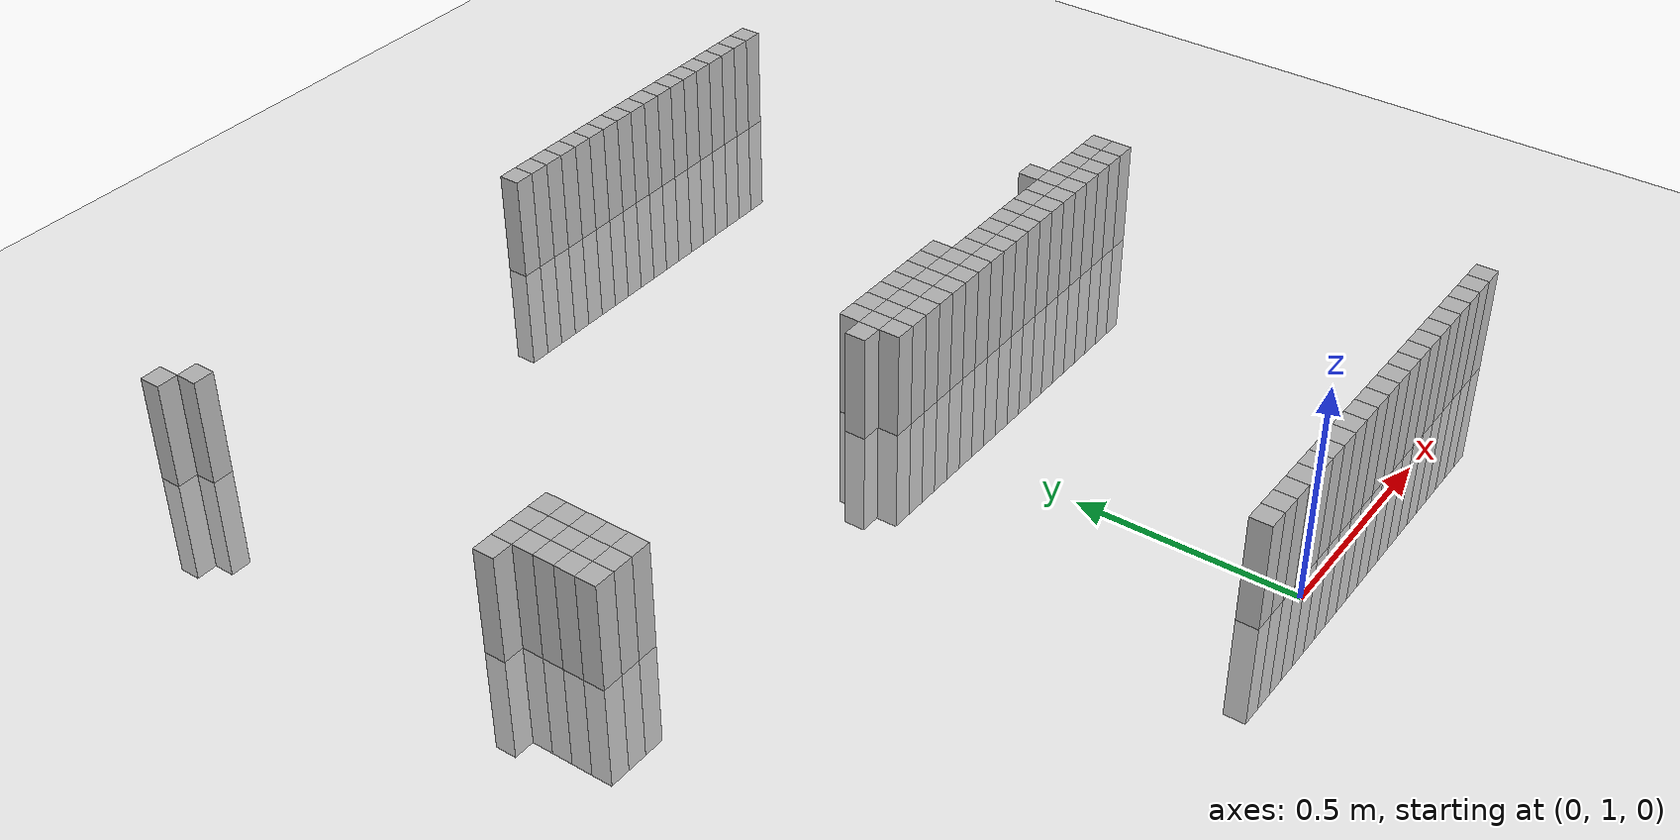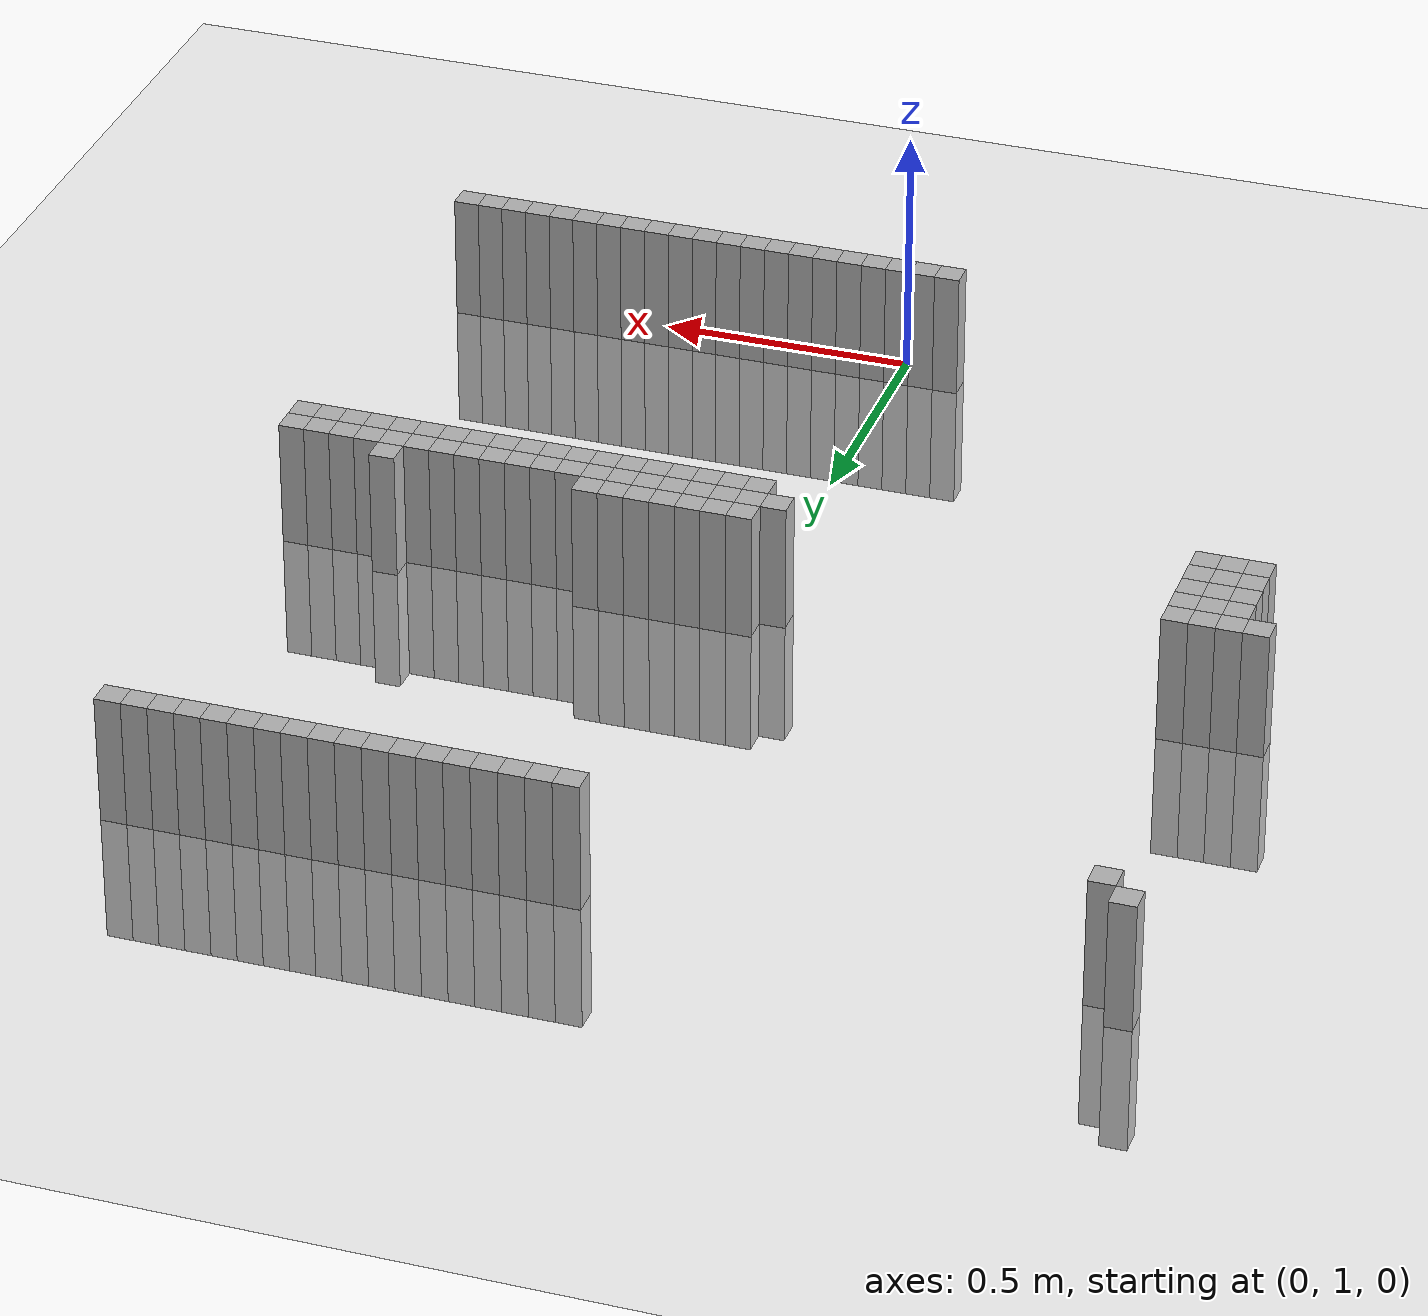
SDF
<sdf version="1.6">
 <world name="my_exploration_world">
  <include><uri>model://ground_plane</uri></include>
  <include><uri>model://sun</uri></include>
  <model name="obstacle_313">
   <pose>-0.09999985247850418 1.0500001646578312 0 0 0 0</pose>
   <link name="link">
    <collision name="collision">
     <geometry><box><size>0.05000000074505806 0.05000000074505806 0.5</size></box></geometry>
    </collision>
    <visual name="visual">
     <geometry><box><size>0.05000000074505806 0.05000000074505806 0.5</size></box></geometry>
    </visual>
   </link>
   <static>true</static>
  </model>
  <model name="obstacle_314">
   <pose>-0.04999985173344612 1.0500001646578312 0 0 0 0</pose>
   <link name="link">
    <collision name="collision">
     <geometry><box><size>0.05000000074505806 0.05000000074505806 0.5</size></box></geometry>
    </collision>
    <visual name="visual">
     <geometry><box><size>0.05000000074505806 0.05000000074505806 0.5</size></box></geometry>
    </visual>
   </link>
   <static>true</static>
  </model>
  <model name="obstacle_315">
   <pose>1.4901161193847656e-07 1.0500001646578312 0 0 0 0</pose>
   <link name="link">
    <collision name="collision">
     <geometry><box><size>0.05000000074505806 0.05000000074505806 0.5</size></box></geometry>
    </collision>
    <visual name="visual">
     <geometry><box><size>0.05000000074505806 0.05000000074505806 0.5</size></box></geometry>
    </visual>
   </link>
   <static>true</static>
  </model>
  <model name="obstacle_316">
   <pose>0.05000014975667 1.0500001646578312 0 0 0 0</pose>
   <link name="link">
    <collision name="collision">
     <geometry><box><size>0.05000000074505806 0.05000000074505806 0.5</size></box></geometry>
    </collision>
    <visual name="visual">
     <geometry><box><size>0.05000000074505806 0.05000000074505806 0.5</size></box></geometry>
    </visual>
   </link>
   <static>true</static>
  </model>
  <model name="obstacle_317">
   <pose>0.10000015050172806 1.0500001646578312 0 0 0 0</pose>
   <link name="link">
    <collision name="collision">
     <geometry><box><size>0.05000000074505806 0.05000000074505806 0.5</size></box></geometry>
    </collision>
    <visual name="visual">
     <geometry><box><size>0.05000000074505806 0.05000000074505806 0.5</size></box></geometry>
    </visual>
   </link>
   <static>true</static>
  </model>
  <model name="obstacle_318">
   <pose>0.15000015124678612 1.0500001646578312 0 0 0 0</pose>
   <link name="link">
    <collision name="collision">
     <geometry><box><size>0.05000000074505806 0.05000000074505806 0.5</size></box></geometry>
    </collision>
    <visual name="visual">
     <geometry><box><size>0.05000000074505806 0.05000000074505806 0.5</size></box></geometry>
    </visual>
   </link>
   <static>true</static>
  </model>
  <model name="obstacle_319">
   <pose>0.20000015199184418 1.0500001646578312 0 0 0 0</pose>
   <link name="link">
    <collision name="collision">
     <geometry><box><size>0.05000000074505806 0.05000000074505806 0.5</size></box></geometry>
    </collision>
    <visual name="visual">
     <geometry><box><size>0.05000000074505806 0.05000000074505806 0.5</size></box></geometry>
    </visual>
   </link>
   <static>true</static>
  </model>
  <model name="obstacle_320">
   <pose>0.25000015273690224 1.0500001646578312 0 0 0 0</pose>
   <link name="link">
    <collision name="collision">
     <geometry><box><size>0.05000000074505806 0.05000000074505806 0.5</size></box></geometry>
    </collision>
    <visual name="visual">
     <geometry><box><size>0.05000000074505806 0.05000000074505806 0.5</size></box></geometry>
    </visual>
   </link>
   <static>true</static>
  </model>
  <model name="obstacle_321">
   <pose>0.3000001534819603 1.0500001646578312 0 0 0 0</pose>
   <link name="link">
    <collision name="collision">
     <geometry><box><size>0.05000000074505806 0.05000000074505806 0.5</size></box></geometry>
    </collision>
    <visual name="visual">
     <geometry><box><size>0.05000000074505806 0.05000000074505806 0.5</size></box></geometry>
    </visual>
   </link>
   <static>true</static>
  </model>
  <model name="obstacle_322">
   <pose>0.35000015422701836 1.0500001646578312 0 0 0 0</pose>
   <link name="link">
    <collision name="collision">
     <geometry><box><size>0.05000000074505806 0.05000000074505806 0.5</size></box></geometry>
    </collision>
    <visual name="visual">
     <geometry><box><size>0.05000000074505806 0.05000000074505806 0.5</size></box></geometry>
    </visual>
   </link>
   <static>true</static>
  </model>
  <model name="obstacle_323">
   <pose>0.4000001549720764 1.0500001646578312 0 0 0 0</pose>
   <link name="link">
    <collision name="collision">
     <geometry><box><size>0.05000000074505806 0.05000000074505806 0.5</size></box></geometry>
    </collision>
    <visual name="visual">
     <geometry><box><size>0.05000000074505806 0.05000000074505806 0.5</size></box></geometry>
    </visual>
   </link>
   <static>true</static>
  </model>
  <model name="obstacle_324">
   <pose>0.4500001557171345 1.0500001646578312 0 0 0 0</pose>
   <link name="link">
    <collision name="collision">
     <geometry><box><size>0.05000000074505806 0.05000000074505806 0.5</size></box></geometry>
    </collision>
    <visual name="visual">
     <geometry><box><size>0.05000000074505806 0.05000000074505806 0.5</size></box></geometry>
    </visual>
   </link>
   <static>true</static>
  </model>
  <model name="obstacle_325">
   <pose>0.5000001564621925 1.0500001646578312 0 0 0 0</pose>
   <link name="link">
    <collision name="collision">
     <geometry><box><size>0.05000000074505806 0.05000000074505806 0.5</size></box></geometry>
    </collision>
    <visual name="visual">
     <geometry><box><size>0.05000000074505806 0.05000000074505806 0.5</size></box></geometry>
    </visual>
   </link>
   <static>true</static>
  </model>
  <model name="obstacle_326">
   <pose>0.5500001572072506 1.0500001646578312 0 0 0 0</pose>
   <link name="link">
    <collision name="collision">
     <geometry><box><size>0.05000000074505806 0.05000000074505806 0.5</size></box></geometry>
    </collision>
    <visual name="visual">
     <geometry><box><size>0.05000000074505806 0.05000000074505806 0.5</size></box></geometry>
    </visual>
   </link>
   <static>true</static>
  </model>
  <model name="obstacle_327">
   <pose>0.6000001579523087 1.0500001646578312 0 0 0 0</pose>
   <link name="link">
    <collision name="collision">
     <geometry><box><size>0.05000000074505806 0.05000000074505806 0.5</size></box></geometry>
    </collision>
    <visual name="visual">
     <geometry><box><size>0.05000000074505806 0.05000000074505806 0.5</size></box></geometry>
    </visual>
   </link>
   <static>true</static>
  </model>
  <model name="obstacle_328">
   <pose>0.6500001586973667 1.0500001646578312 0 0 0 0</pose>
   <link name="link">
    <collision name="collision">
     <geometry><box><size>0.05000000074505806 0.05000000074505806 0.5</size></box></geometry>
    </collision>
    <visual name="visual">
     <geometry><box><size>0.05000000074505806 0.05000000074505806 0.5</size></box></geometry>
    </visual>
   </link>
   <static>true</static>
  </model>
  <model name="obstacle_329">
   <pose>0.7000001594424248 1.0500001646578312 0 0 0 0</pose>
   <link name="link">
    <collision name="collision">
     <geometry><box><size>0.05000000074505806 0.05000000074505806 0.5</size></box></geometry>
    </collision>
    <visual name="visual">
     <geometry><box><size>0.05000000074505806 0.05000000074505806 0.5</size></box></geometry>
    </visual>
   </link>
   <static>true</static>
  </model>
  <model name="obstacle_330">
   <pose>0.7500001601874828 1.0500001646578312 0 0 0 0</pose>
   <link name="link">
    <collision name="collision">
     <geometry><box><size>0.05000000074505806 0.05000000074505806 0.5</size></box></geometry>
    </collision>
    <visual name="visual">
     <geometry><box><size>0.05000000074505806 0.05000000074505806 0.5</size></box></geometry>
    </visual>
   </link>
   <static>true</static>
  </model>
  <model name="obstacle_331">
   <pose>0.8000001609325409 1.0500001646578312 0 0 0 0</pose>
   <link name="link">
    <collision name="collision">
     <geometry><box><size>0.05000000074505806 0.05000000074505806 0.5</size></box></geometry>
    </collision>
    <visual name="visual">
     <geometry><box><size>0.05000000074505806 0.05000000074505806 0.5</size></box></geometry>
    </visual>
   </link>
   <static>true</static>
  </model>
  <model name="obstacle_332">
   <pose>0.850000161677599 1.0500001646578312 0 0 0 0</pose>
   <link name="link">
    <collision name="collision">
     <geometry><box><size>0.05000000074505806 0.05000000074505806 0.5</size></box></geometry>
    </collision>
    <visual name="visual">
     <geometry><box><size>0.05000000074505806 0.05000000074505806 0.5</size></box></geometry>
    </visual>
   </link>
   <static>true</static>
  </model>
  <model name="obstacle_333">
   <pose>0.900000162422657 1.0500001646578312 0 0 0 0</pose>
   <link name="link">
    <collision name="collision">
     <geometry><box><size>0.05000000074505806 0.05000000074505806 0.5</size></box></geometry>
    </collision>
    <visual name="visual">
     <geometry><box><size>0.05000000074505806 0.05000000074505806 0.5</size></box></geometry>
    </visual>
   </link>
   <static>true</static>
  </model>
  <model name="obstacle_386">
   <pose>-0.9499998651444912 1.9500001780688763 0 0 0 0</pose>
   <link name="link">
    <collision name="collision">
     <geometry><box><size>0.05000000074505806 0.05000000074505806 0.5</size></box></geometry>
    </collision>
    <visual name="visual">
     <geometry><box><size>0.05000000074505806 0.05000000074505806 0.5</size></box></geometry>
    </visual>
   </link>
   <static>true</static>
  </model>
  <model name="obstacle_387">
   <pose>-0.8999998643994331 1.9500001780688763 0 0 0 0</pose>
   <link name="link">
    <collision name="collision">
     <geometry><box><size>0.05000000074505806 0.05000000074505806 0.5</size></box></geometry>
    </collision>
    <visual name="visual">
     <geometry><box><size>0.05000000074505806 0.05000000074505806 0.5</size></box></geometry>
    </visual>
   </link>
   <static>true</static>
  </model>
  <model name="obstacle_388">
   <pose>-0.8499998636543751 1.9500001780688763 0 0 0 0</pose>
   <link name="link">
    <collision name="collision">
     <geometry><box><size>0.05000000074505806 0.05000000074505806 0.5</size></box></geometry>
    </collision>
    <visual name="visual">
     <geometry><box><size>0.05000000074505806 0.05000000074505806 0.5</size></box></geometry>
    </visual>
   </link>
   <static>true</static>
  </model>
  <model name="obstacle_389">
   <pose>1.4901161193847656e-07 1.9500001780688763 0 0 0 0</pose>
   <link name="link">
    <collision name="collision">
     <geometry><box><size>0.05000000074505806 0.05000000074505806 0.5</size></box></geometry>
    </collision>
    <visual name="visual">
     <geometry><box><size>0.05000000074505806 0.05000000074505806 0.5</size></box></geometry>
    </visual>
   </link>
   <static>true</static>
  </model>
  <model name="obstacle_390">
   <pose>0.05000014975667 1.9500001780688763 0 0 0 0</pose>
   <link name="link">
    <collision name="collision">
     <geometry><box><size>0.05000000074505806 0.05000000074505806 0.5</size></box></geometry>
    </collision>
    <visual name="visual">
     <geometry><box><size>0.05000000074505806 0.05000000074505806 0.5</size></box></geometry>
    </visual>
   </link>
   <static>true</static>
  </model>
  <model name="obstacle_391">
   <pose>0.10000015050172806 1.9500001780688763 0 0 0 0</pose>
   <link name="link">
    <collision name="collision">
     <geometry><box><size>0.05000000074505806 0.05000000074505806 0.5</size></box></geometry>
    </collision>
    <visual name="visual">
     <geometry><box><size>0.05000000074505806 0.05000000074505806 0.5</size></box></geometry>
    </visual>
   </link>
   <static>true</static>
  </model>
  <model name="obstacle_392">
   <pose>0.15000015124678612 1.9500001780688763 0 0 0 0</pose>
   <link name="link">
    <collision name="collision">
     <geometry><box><size>0.05000000074505806 0.05000000074505806 0.5</size></box></geometry>
    </collision>
    <visual name="visual">
     <geometry><box><size>0.05000000074505806 0.05000000074505806 0.5</size></box></geometry>
    </visual>
   </link>
   <static>true</static>
  </model>
  <model name="obstacle_393">
   <pose>0.20000015199184418 1.9500001780688763 0 0 0 0</pose>
   <link name="link">
    <collision name="collision">
     <geometry><box><size>0.05000000074505806 0.05000000074505806 0.5</size></box></geometry>
    </collision>
    <visual name="visual">
     <geometry><box><size>0.05000000074505806 0.05000000074505806 0.5</size></box></geometry>
    </visual>
   </link>
   <static>true</static>
  </model>
  <model name="obstacle_394">
   <pose>0.25000015273690224 1.9500001780688763 0 0 0 0</pose>
   <link name="link">
    <collision name="collision">
     <geometry><box><size>0.05000000074505806 0.05000000074505806 0.5</size></box></geometry>
    </collision>
    <visual name="visual">
     <geometry><box><size>0.05000000074505806 0.05000000074505806 0.5</size></box></geometry>
    </visual>
   </link>
   <static>true</static>
  </model>
  <model name="obstacle_395">
   <pose>0.3000001534819603 1.9500001780688763 0 0 0 0</pose>
   <link name="link">
    <collision name="collision">
     <geometry><box><size>0.05000000074505806 0.05000000074505806 0.5</size></box></geometry>
    </collision>
    <visual name="visual">
     <geometry><box><size>0.05000000074505806 0.05000000074505806 0.5</size></box></geometry>
    </visual>
   </link>
   <static>true</static>
  </model>
  <model name="obstacle_396">
   <pose>0.35000015422701836 1.9500001780688763 0 0 0 0</pose>
   <link name="link">
    <collision name="collision">
     <geometry><box><size>0.05000000074505806 0.05000000074505806 0.5</size></box></geometry>
    </collision>
    <visual name="visual">
     <geometry><box><size>0.05000000074505806 0.05000000074505806 0.5</size></box></geometry>
    </visual>
   </link>
   <static>true</static>
  </model>
  <model name="obstacle_397">
   <pose>0.4000001549720764 1.9500001780688763 0 0 0 0</pose>
   <link name="link">
    <collision name="collision">
     <geometry><box><size>0.05000000074505806 0.05000000074505806 0.5</size></box></geometry>
    </collision>
    <visual name="visual">
     <geometry><box><size>0.05000000074505806 0.05000000074505806 0.5</size></box></geometry>
    </visual>
   </link>
   <static>true</static>
  </model>
  <model name="obstacle_398">
   <pose>0.4500001557171345 1.9500001780688763 0 0 0 0</pose>
   <link name="link">
    <collision name="collision">
     <geometry><box><size>0.05000000074505806 0.05000000074505806 0.5</size></box></geometry>
    </collision>
    <visual name="visual">
     <geometry><box><size>0.05000000074505806 0.05000000074505806 0.5</size></box></geometry>
    </visual>
   </link>
   <static>true</static>
  </model>
  <model name="obstacle_399">
   <pose>0.5000001564621925 1.9500001780688763 0 0 0 0</pose>
   <link name="link">
    <collision name="collision">
     <geometry><box><size>0.05000000074505806 0.05000000074505806 0.5</size></box></geometry>
    </collision>
    <visual name="visual">
     <geometry><box><size>0.05000000074505806 0.05000000074505806 0.5</size></box></geometry>
    </visual>
   </link>
   <static>true</static>
  </model>
  <model name="obstacle_400">
   <pose>0.5500001572072506 1.9500001780688763 0 0 0 0</pose>
   <link name="link">
    <collision name="collision">
     <geometry><box><size>0.05000000074505806 0.05000000074505806 0.5</size></box></geometry>
    </collision>
    <visual name="visual">
     <geometry><box><size>0.05000000074505806 0.05000000074505806 0.5</size></box></geometry>
    </visual>
   </link>
   <static>true</static>
  </model>
  <model name="obstacle_401">
   <pose>0.6000001579523087 1.9500001780688763 0 0 0 0</pose>
   <link name="link">
    <collision name="collision">
     <geometry><box><size>0.05000000074505806 0.05000000074505806 0.5</size></box></geometry>
    </collision>
    <visual name="visual">
     <geometry><box><size>0.05000000074505806 0.05000000074505806 0.5</size></box></geometry>
    </visual>
   </link>
   <static>true</static>
  </model>
  <model name="obstacle_402">
   <pose>0.6500001586973667 1.9500001780688763 0 0 0 0</pose>
   <link name="link">
    <collision name="collision">
     <geometry><box><size>0.05000000074505806 0.05000000074505806 0.5</size></box></geometry>
    </collision>
    <visual name="visual">
     <geometry><box><size>0.05000000074505806 0.05000000074505806 0.5</size></box></geometry>
    </visual>
   </link>
   <static>true</static>
  </model>
  <model name="obstacle_403">
   <pose>0.7000001594424248 1.9500001780688763 0 0 0 0</pose>
   <link name="link">
    <collision name="collision">
     <geometry><box><size>0.05000000074505806 0.05000000074505806 0.5</size></box></geometry>
    </collision>
    <visual name="visual">
     <geometry><box><size>0.05000000074505806 0.05000000074505806 0.5</size></box></geometry>
    </visual>
   </link>
   <static>true</static>
  </model>
  <model name="obstacle_404">
   <pose>0.7500001601874828 1.9500001780688763 0 0 0 0</pose>
   <link name="link">
    <collision name="collision">
     <geometry><box><size>0.05000000074505806 0.05000000074505806 0.5</size></box></geometry>
    </collision>
    <visual name="visual">
     <geometry><box><size>0.05000000074505806 0.05000000074505806 0.5</size></box></geometry>
    </visual>
   </link>
   <static>true</static>
  </model>
  <model name="obstacle_405">
   <pose>0.8000001609325409 1.9500001780688763 0 0 0 0</pose>
   <link name="link">
    <collision name="collision">
     <geometry><box><size>0.05000000074505806 0.05000000074505806 0.5</size></box></geometry>
    </collision>
    <visual name="visual">
     <geometry><box><size>0.05000000074505806 0.05000000074505806 0.5</size></box></geometry>
    </visual>
   </link>
   <static>true</static>
  </model>
  <model name="obstacle_406">
   <pose>0.850000161677599 1.9500001780688763 0 0 0 0</pose>
   <link name="link">
    <collision name="collision">
     <geometry><box><size>0.05000000074505806 0.05000000074505806 0.5</size></box></geometry>
    </collision>
    <visual name="visual">
     <geometry><box><size>0.05000000074505806 0.05000000074505806 0.5</size></box></geometry>
    </visual>
   </link>
   <static>true</static>
  </model>
  <model name="obstacle_407">
   <pose>0.900000162422657 1.9500001780688763 0 0 0 0</pose>
   <link name="link">
    <collision name="collision">
     <geometry><box><size>0.05000000074505806 0.05000000074505806 0.5</size></box></geometry>
    </collision>
    <visual name="visual">
     <geometry><box><size>0.05000000074505806 0.05000000074505806 0.5</size></box></geometry>
    </visual>
   </link>
   <static>true</static>
  </model>
  <model name="obstacle_429">
   <pose>-0.9499998651444912 2.0000001788139343 0 0 0 0</pose>
   <link name="link">
    <collision name="collision">
     <geometry><box><size>0.05000000074505806 0.05000000074505806 0.5</size></box></geometry>
    </collision>
    <visual name="visual">
     <geometry><box><size>0.05000000074505806 0.05000000074505806 0.5</size></box></geometry>
    </visual>
   </link>
   <static>true</static>
  </model>
  <model name="obstacle_430">
   <pose>-0.8999998643994331 2.0000001788139343 0 0 0 0</pose>
   <link name="link">
    <collision name="collision">
     <geometry><box><size>0.05000000074505806 0.05000000074505806 0.5</size></box></geometry>
    </collision>
    <visual name="visual">
     <geometry><box><size>0.05000000074505806 0.05000000074505806 0.5</size></box></geometry>
    </visual>
   </link>
   <static>true</static>
  </model>
  <model name="obstacle_431">
   <pose>-0.8499998636543751 2.0000001788139343 0 0 0 0</pose>
   <link name="link">
    <collision name="collision">
     <geometry><box><size>0.05000000074505806 0.05000000074505806 0.5</size></box></geometry>
    </collision>
    <visual name="visual">
     <geometry><box><size>0.05000000074505806 0.05000000074505806 0.5</size></box></geometry>
    </visual>
   </link>
   <static>true</static>
  </model>
  <model name="obstacle_432">
   <pose>-0.04999985173344612 2.0000001788139343 0 0 0 0</pose>
   <link name="link">
    <collision name="collision">
     <geometry><box><size>0.05000000074505806 0.05000000074505806 0.5</size></box></geometry>
    </collision>
    <visual name="visual">
     <geometry><box><size>0.05000000074505806 0.05000000074505806 0.5</size></box></geometry>
    </visual>
   </link>
   <static>true</static>
  </model>
  <model name="obstacle_433">
   <pose>1.4901161193847656e-07 2.0000001788139343 0 0 0 0</pose>
   <link name="link">
    <collision name="collision">
     <geometry><box><size>0.05000000074505806 0.05000000074505806 0.5</size></box></geometry>
    </collision>
    <visual name="visual">
     <geometry><box><size>0.05000000074505806 0.05000000074505806 0.5</size></box></geometry>
    </visual>
   </link>
   <static>true</static>
  </model>
  <model name="obstacle_434">
   <pose>0.05000014975667 2.0000001788139343 0 0 0 0</pose>
   <link name="link">
    <collision name="collision">
     <geometry><box><size>0.05000000074505806 0.05000000074505806 0.5</size></box></geometry>
    </collision>
    <visual name="visual">
     <geometry><box><size>0.05000000074505806 0.05000000074505806 0.5</size></box></geometry>
    </visual>
   </link>
   <static>true</static>
  </model>
  <model name="obstacle_435">
   <pose>0.10000015050172806 2.0000001788139343 0 0 0 0</pose>
   <link name="link">
    <collision name="collision">
     <geometry><box><size>0.05000000074505806 0.05000000074505806 0.5</size></box></geometry>
    </collision>
    <visual name="visual">
     <geometry><box><size>0.05000000074505806 0.05000000074505806 0.5</size></box></geometry>
    </visual>
   </link>
   <static>true</static>
  </model>
  <model name="obstacle_436">
   <pose>0.15000015124678612 2.0000001788139343 0 0 0 0</pose>
   <link name="link">
    <collision name="collision">
     <geometry><box><size>0.05000000074505806 0.05000000074505806 0.5</size></box></geometry>
    </collision>
    <visual name="visual">
     <geometry><box><size>0.05000000074505806 0.05000000074505806 0.5</size></box></geometry>
    </visual>
   </link>
   <static>true</static>
  </model>
  <model name="obstacle_437">
   <pose>0.20000015199184418 2.0000001788139343 0 0 0 0</pose>
   <link name="link">
    <collision name="collision">
     <geometry><box><size>0.05000000074505806 0.05000000074505806 0.5</size></box></geometry>
    </collision>
    <visual name="visual">
     <geometry><box><size>0.05000000074505806 0.05000000074505806 0.5</size></box></geometry>
    </visual>
   </link>
   <static>true</static>
  </model>
  <model name="obstacle_438">
   <pose>0.25000015273690224 2.0000001788139343 0 0 0 0</pose>
   <link name="link">
    <collision name="collision">
     <geometry><box><size>0.05000000074505806 0.05000000074505806 0.5</size></box></geometry>
    </collision>
    <visual name="visual">
     <geometry><box><size>0.05000000074505806 0.05000000074505806 0.5</size></box></geometry>
    </visual>
   </link>
   <static>true</static>
  </model>
  <model name="obstacle_439">
   <pose>0.3000001534819603 2.0000001788139343 0 0 0 0</pose>
   <link name="link">
    <collision name="collision">
     <geometry><box><size>0.05000000074505806 0.05000000074505806 0.5</size></box></geometry>
    </collision>
    <visual name="visual">
     <geometry><box><size>0.05000000074505806 0.05000000074505806 0.5</size></box></geometry>
    </visual>
   </link>
   <static>true</static>
  </model>
  <model name="obstacle_440">
   <pose>0.35000015422701836 2.0000001788139343 0 0 0 0</pose>
   <link name="link">
    <collision name="collision">
     <geometry><box><size>0.05000000074505806 0.05000000074505806 0.5</size></box></geometry>
    </collision>
    <visual name="visual">
     <geometry><box><size>0.05000000074505806 0.05000000074505806 0.5</size></box></geometry>
    </visual>
   </link>
   <static>true</static>
  </model>
  <model name="obstacle_441">
   <pose>0.4000001549720764 2.0000001788139343 0 0 0 0</pose>
   <link name="link">
    <collision name="collision">
     <geometry><box><size>0.05000000074505806 0.05000000074505806 0.5</size></box></geometry>
    </collision>
    <visual name="visual">
     <geometry><box><size>0.05000000074505806 0.05000000074505806 0.5</size></box></geometry>
    </visual>
   </link>
   <static>true</static>
  </model>
  <model name="obstacle_442">
   <pose>0.4500001557171345 2.0000001788139343 0 0 0 0</pose>
   <link name="link">
    <collision name="collision">
     <geometry><box><size>0.05000000074505806 0.05000000074505806 0.5</size></box></geometry>
    </collision>
    <visual name="visual">
     <geometry><box><size>0.05000000074505806 0.05000000074505806 0.5</size></box></geometry>
    </visual>
   </link>
   <static>true</static>
  </model>
  <model name="obstacle_443">
   <pose>0.5000001564621925 2.0000001788139343 0 0 0 0</pose>
   <link name="link">
    <collision name="collision">
     <geometry><box><size>0.05000000074505806 0.05000000074505806 0.5</size></box></geometry>
    </collision>
    <visual name="visual">
     <geometry><box><size>0.05000000074505806 0.05000000074505806 0.5</size></box></geometry>
    </visual>
   </link>
   <static>true</static>
  </model>
  <model name="obstacle_444">
   <pose>0.5500001572072506 2.0000001788139343 0 0 0 0</pose>
   <link name="link">
    <collision name="collision">
     <geometry><box><size>0.05000000074505806 0.05000000074505806 0.5</size></box></geometry>
    </collision>
    <visual name="visual">
     <geometry><box><size>0.05000000074505806 0.05000000074505806 0.5</size></box></geometry>
    </visual>
   </link>
   <static>true</static>
  </model>
  <model name="obstacle_445">
   <pose>0.6000001579523087 2.0000001788139343 0 0 0 0</pose>
   <link name="link">
    <collision name="collision">
     <geometry><box><size>0.05000000074505806 0.05000000074505806 0.5</size></box></geometry>
    </collision>
    <visual name="visual">
     <geometry><box><size>0.05000000074505806 0.05000000074505806 0.5</size></box></geometry>
    </visual>
   </link>
   <static>true</static>
  </model>
  <model name="obstacle_446">
   <pose>0.6500001586973667 2.0000001788139343 0 0 0 0</pose>
   <link name="link">
    <collision name="collision">
     <geometry><box><size>0.05000000074505806 0.05000000074505806 0.5</size></box></geometry>
    </collision>
    <visual name="visual">
     <geometry><box><size>0.05000000074505806 0.05000000074505806 0.5</size></box></geometry>
    </visual>
   </link>
   <static>true</static>
  </model>
  <model name="obstacle_447">
   <pose>0.7000001594424248 2.0000001788139343 0 0 0 0</pose>
   <link name="link">
    <collision name="collision">
     <geometry><box><size>0.05000000074505806 0.05000000074505806 0.5</size></box></geometry>
    </collision>
    <visual name="visual">
     <geometry><box><size>0.05000000074505806 0.05000000074505806 0.5</size></box></geometry>
    </visual>
   </link>
   <static>true</static>
  </model>
  <model name="obstacle_448">
   <pose>0.7500001601874828 2.0000001788139343 0 0 0 0</pose>
   <link name="link">
    <collision name="collision">
     <geometry><box><size>0.05000000074505806 0.05000000074505806 0.5</size></box></geometry>
    </collision>
    <visual name="visual">
     <geometry><box><size>0.05000000074505806 0.05000000074505806 0.5</size></box></geometry>
    </visual>
   </link>
   <static>true</static>
  </model>
  <model name="obstacle_449">
   <pose>0.8000001609325409 2.0000001788139343 0 0 0 0</pose>
   <link name="link">
    <collision name="collision">
     <geometry><box><size>0.05000000074505806 0.05000000074505806 0.5</size></box></geometry>
    </collision>
    <visual name="visual">
     <geometry><box><size>0.05000000074505806 0.05000000074505806 0.5</size></box></geometry>
    </visual>
   </link>
   <static>true</static>
  </model>
  <model name="obstacle_450">
   <pose>0.850000161677599 2.0000001788139343 0 0 0 0</pose>
   <link name="link">
    <collision name="collision">
     <geometry><box><size>0.05000000074505806 0.05000000074505806 0.5</size></box></geometry>
    </collision>
    <visual name="visual">
     <geometry><box><size>0.05000000074505806 0.05000000074505806 0.5</size></box></geometry>
    </visual>
   </link>
   <static>true</static>
  </model>
  <model name="obstacle_451">
   <pose>0.900000162422657 2.0000001788139343 0 0 0 0</pose>
   <link name="link">
    <collision name="collision">
     <geometry><box><size>0.05000000074505806 0.05000000074505806 0.5</size></box></geometry>
    </collision>
    <visual name="visual">
     <geometry><box><size>0.05000000074505806 0.05000000074505806 0.5</size></box></geometry>
    </visual>
   </link>
   <static>true</static>
  </model>
  <model name="obstacle_471">
   <pose>-0.9499998651444912 2.0500001795589924 0 0 0 0</pose>
   <link name="link">
    <collision name="collision">
     <geometry><box><size>0.05000000074505806 0.05000000074505806 0.5</size></box></geometry>
    </collision>
    <visual name="visual">
     <geometry><box><size>0.05000000074505806 0.05000000074505806 0.5</size></box></geometry>
    </visual>
   </link>
   <static>true</static>
  </model>
  <model name="obstacle_472">
   <pose>-0.8999998643994331 2.0500001795589924 0 0 0 0</pose>
   <link name="link">
    <collision name="collision">
     <geometry><box><size>0.05000000074505806 0.05000000074505806 0.5</size></box></geometry>
    </collision>
    <visual name="visual">
     <geometry><box><size>0.05000000074505806 0.05000000074505806 0.5</size></box></geometry>
    </visual>
   </link>
   <static>true</static>
  </model>
  <model name="obstacle_473">
   <pose>-0.8499998636543751 2.0500001795589924 0 0 0 0</pose>
   <link name="link">
    <collision name="collision">
     <geometry><box><size>0.05000000074505806 0.05000000074505806 0.5</size></box></geometry>
    </collision>
    <visual name="visual">
     <geometry><box><size>0.05000000074505806 0.05000000074505806 0.5</size></box></geometry>
    </visual>
   </link>
   <static>true</static>
  </model>
  <model name="obstacle_474">
   <pose>1.4901161193847656e-07 2.0500001795589924 0 0 0 0</pose>
   <link name="link">
    <collision name="collision">
     <geometry><box><size>0.05000000074505806 0.05000000074505806 0.5</size></box></geometry>
    </collision>
    <visual name="visual">
     <geometry><box><size>0.05000000074505806 0.05000000074505806 0.5</size></box></geometry>
    </visual>
   </link>
   <static>true</static>
  </model>
  <model name="obstacle_475">
   <pose>0.05000014975667 2.0500001795589924 0 0 0 0</pose>
   <link name="link">
    <collision name="collision">
     <geometry><box><size>0.05000000074505806 0.05000000074505806 0.5</size></box></geometry>
    </collision>
    <visual name="visual">
     <geometry><box><size>0.05000000074505806 0.05000000074505806 0.5</size></box></geometry>
    </visual>
   </link>
   <static>true</static>
  </model>
  <model name="obstacle_476">
   <pose>0.10000015050172806 2.0500001795589924 0 0 0 0</pose>
   <link name="link">
    <collision name="collision">
     <geometry><box><size>0.05000000074505806 0.05000000074505806 0.5</size></box></geometry>
    </collision>
    <visual name="visual">
     <geometry><box><size>0.05000000074505806 0.05000000074505806 0.5</size></box></geometry>
    </visual>
   </link>
   <static>true</static>
  </model>
  <model name="obstacle_477">
   <pose>0.15000015124678612 2.0500001795589924 0 0 0 0</pose>
   <link name="link">
    <collision name="collision">
     <geometry><box><size>0.05000000074505806 0.05000000074505806 0.5</size></box></geometry>
    </collision>
    <visual name="visual">
     <geometry><box><size>0.05000000074505806 0.05000000074505806 0.5</size></box></geometry>
    </visual>
   </link>
   <static>true</static>
  </model>
  <model name="obstacle_478">
   <pose>0.20000015199184418 2.0500001795589924 0 0 0 0</pose>
   <link name="link">
    <collision name="collision">
     <geometry><box><size>0.05000000074505806 0.05000000074505806 0.5</size></box></geometry>
    </collision>
    <visual name="visual">
     <geometry><box><size>0.05000000074505806 0.05000000074505806 0.5</size></box></geometry>
    </visual>
   </link>
   <static>true</static>
  </model>
  <model name="obstacle_479">
   <pose>0.25000015273690224 2.0500001795589924 0 0 0 0</pose>
   <link name="link">
    <collision name="collision">
     <geometry><box><size>0.05000000074505806 0.05000000074505806 0.5</size></box></geometry>
    </collision>
    <visual name="visual">
     <geometry><box><size>0.05000000074505806 0.05000000074505806 0.5</size></box></geometry>
    </visual>
   </link>
   <static>true</static>
  </model>
  <model name="obstacle_480">
   <pose>0.3000001534819603 2.0500001795589924 0 0 0 0</pose>
   <link name="link">
    <collision name="collision">
     <geometry><box><size>0.05000000074505806 0.05000000074505806 0.5</size></box></geometry>
    </collision>
    <visual name="visual">
     <geometry><box><size>0.05000000074505806 0.05000000074505806 0.5</size></box></geometry>
    </visual>
   </link>
   <static>true</static>
  </model>
  <model name="obstacle_481">
   <pose>0.7000001594424248 2.0500001795589924 0 0 0 0</pose>
   <link name="link">
    <collision name="collision">
     <geometry><box><size>0.05000000074505806 0.05000000074505806 0.5</size></box></geometry>
    </collision>
    <visual name="visual">
     <geometry><box><size>0.05000000074505806 0.05000000074505806 0.5</size></box></geometry>
    </visual>
   </link>
   <static>true</static>
  </model>
  <model name="obstacle_482">
   <pose>-0.9499998651444912 2.1000001803040504 0 0 0 0</pose>
   <link name="link">
    <collision name="collision">
     <geometry><box><size>0.05000000074505806 0.05000000074505806 0.5</size></box></geometry>
    </collision>
    <visual name="visual">
     <geometry><box><size>0.05000000074505806 0.05000000074505806 0.5</size></box></geometry>
    </visual>
   </link>
   <static>true</static>
  </model>
  <model name="obstacle_483">
   <pose>-0.8999998643994331 2.1000001803040504 0 0 0 0</pose>
   <link name="link">
    <collision name="collision">
     <geometry><box><size>0.05000000074505806 0.05000000074505806 0.5</size></box></geometry>
    </collision>
    <visual name="visual">
     <geometry><box><size>0.05000000074505806 0.05000000074505806 0.5</size></box></geometry>
    </visual>
   </link>
   <static>true</static>
  </model>
  <model name="obstacle_484">
   <pose>-0.8499998636543751 2.1000001803040504 0 0 0 0</pose>
   <link name="link">
    <collision name="collision">
     <geometry><box><size>0.05000000074505806 0.05000000074505806 0.5</size></box></geometry>
    </collision>
    <visual name="visual">
     <geometry><box><size>0.05000000074505806 0.05000000074505806 0.5</size></box></geometry>
    </visual>
   </link>
   <static>true</static>
  </model>
  <model name="obstacle_485">
   <pose>-0.9999998658895493 2.1500001810491085 0 0 0 0</pose>
   <link name="link">
    <collision name="collision">
     <geometry><box><size>0.05000000074505806 0.05000000074505806 0.5</size></box></geometry>
    </collision>
    <visual name="visual">
     <geometry><box><size>0.05000000074505806 0.05000000074505806 0.5</size></box></geometry>
    </visual>
   </link>
   <static>true</static>
  </model>
  <model name="obstacle_486">
   <pose>-0.9499998651444912 2.1500001810491085 0 0 0 0</pose>
   <link name="link">
    <collision name="collision">
     <geometry><box><size>0.05000000074505806 0.05000000074505806 0.5</size></box></geometry>
    </collision>
    <visual name="visual">
     <geometry><box><size>0.05000000074505806 0.05000000074505806 0.5</size></box></geometry>
    </visual>
   </link>
   <static>true</static>
  </model>
  <model name="obstacle_487">
   <pose>-0.8999998643994331 2.1500001810491085 0 0 0 0</pose>
   <link name="link">
    <collision name="collision">
     <geometry><box><size>0.05000000074505806 0.05000000074505806 0.5</size></box></geometry>
    </collision>
    <visual name="visual">
     <geometry><box><size>0.05000000074505806 0.05000000074505806 0.5</size></box></geometry>
    </visual>
   </link>
   <static>true</static>
  </model>
  <model name="obstacle_488">
   <pose>-0.8499998636543751 2.1500001810491085 0 0 0 0</pose>
   <link name="link">
    <collision name="collision">
     <geometry><box><size>0.05000000074505806 0.05000000074505806 0.5</size></box></geometry>
    </collision>
    <visual name="visual">
     <geometry><box><size>0.05000000074505806 0.05000000074505806 0.5</size></box></geometry>
    </visual>
   </link>
   <static>true</static>
  </model>
  <model name="obstacle_496">
   <pose>-0.9499998651444912 3.0000001937150955 0 0 0 0</pose>
   <link name="link">
    <collision name="collision">
     <geometry><box><size>0.05000000074505806 0.05000000074505806 0.5</size></box></geometry>
    </collision>
    <visual name="visual">
     <geometry><box><size>0.05000000074505806 0.05000000074505806 0.5</size></box></geometry>
    </visual>
   </link>
   <static>true</static>
  </model>
  <model name="obstacle_497">
   <pose>1.4901161193847656e-07 3.0000001937150955 0 0 0 0</pose>
   <link name="link">
    <collision name="collision">
     <geometry><box><size>0.05000000074505806 0.05000000074505806 0.5</size></box></geometry>
    </collision>
    <visual name="visual">
     <geometry><box><size>0.05000000074505806 0.05000000074505806 0.5</size></box></geometry>
    </visual>
   </link>
   <static>true</static>
  </model>
  <model name="obstacle_498">
   <pose>0.05000014975667 3.0000001937150955 0 0 0 0</pose>
   <link name="link">
    <collision name="collision">
     <geometry><box><size>0.05000000074505806 0.05000000074505806 0.5</size></box></geometry>
    </collision>
    <visual name="visual">
     <geometry><box><size>0.05000000074505806 0.05000000074505806 0.5</size></box></geometry>
    </visual>
   </link>
   <static>true</static>
  </model>
  <model name="obstacle_499">
   <pose>0.10000015050172806 3.0000001937150955 0 0 0 0</pose>
   <link name="link">
    <collision name="collision">
     <geometry><box><size>0.05000000074505806 0.05000000074505806 0.5</size></box></geometry>
    </collision>
    <visual name="visual">
     <geometry><box><size>0.05000000074505806 0.05000000074505806 0.5</size></box></geometry>
    </visual>
   </link>
   <static>true</static>
  </model>
  <model name="obstacle_500">
   <pose>0.15000015124678612 3.0000001937150955 0 0 0 0</pose>
   <link name="link">
    <collision name="collision">
     <geometry><box><size>0.05000000074505806 0.05000000074505806 0.5</size></box></geometry>
    </collision>
    <visual name="visual">
     <geometry><box><size>0.05000000074505806 0.05000000074505806 0.5</size></box></geometry>
    </visual>
   </link>
   <static>true</static>
  </model>
  <model name="obstacle_501">
   <pose>0.20000015199184418 3.0000001937150955 0 0 0 0</pose>
   <link name="link">
    <collision name="collision">
     <geometry><box><size>0.05000000074505806 0.05000000074505806 0.5</size></box></geometry>
    </collision>
    <visual name="visual">
     <geometry><box><size>0.05000000074505806 0.05000000074505806 0.5</size></box></geometry>
    </visual>
   </link>
   <static>true</static>
  </model>
  <model name="obstacle_502">
   <pose>0.25000015273690224 3.0000001937150955 0 0 0 0</pose>
   <link name="link">
    <collision name="collision">
     <geometry><box><size>0.05000000074505806 0.05000000074505806 0.5</size></box></geometry>
    </collision>
    <visual name="visual">
     <geometry><box><size>0.05000000074505806 0.05000000074505806 0.5</size></box></geometry>
    </visual>
   </link>
   <static>true</static>
  </model>
  <model name="obstacle_503">
   <pose>0.3000001534819603 3.0000001937150955 0 0 0 0</pose>
   <link name="link">
    <collision name="collision">
     <geometry><box><size>0.05000000074505806 0.05000000074505806 0.5</size></box></geometry>
    </collision>
    <visual name="visual">
     <geometry><box><size>0.05000000074505806 0.05000000074505806 0.5</size></box></geometry>
    </visual>
   </link>
   <static>true</static>
  </model>
  <model name="obstacle_504">
   <pose>0.35000015422701836 3.0000001937150955 0 0 0 0</pose>
   <link name="link">
    <collision name="collision">
     <geometry><box><size>0.05000000074505806 0.05000000074505806 0.5</size></box></geometry>
    </collision>
    <visual name="visual">
     <geometry><box><size>0.05000000074505806 0.05000000074505806 0.5</size></box></geometry>
    </visual>
   </link>
   <static>true</static>
  </model>
  <model name="obstacle_505">
   <pose>0.4000001549720764 3.0000001937150955 0 0 0 0</pose>
   <link name="link">
    <collision name="collision">
     <geometry><box><size>0.05000000074505806 0.05000000074505806 0.5</size></box></geometry>
    </collision>
    <visual name="visual">
     <geometry><box><size>0.05000000074505806 0.05000000074505806 0.5</size></box></geometry>
    </visual>
   </link>
   <static>true</static>
  </model>
  <model name="obstacle_506">
   <pose>0.4500001557171345 3.0000001937150955 0 0 0 0</pose>
   <link name="link">
    <collision name="collision">
     <geometry><box><size>0.05000000074505806 0.05000000074505806 0.5</size></box></geometry>
    </collision>
    <visual name="visual">
     <geometry><box><size>0.05000000074505806 0.05000000074505806 0.5</size></box></geometry>
    </visual>
   </link>
   <static>true</static>
  </model>
  <model name="obstacle_507">
   <pose>0.5000001564621925 3.0000001937150955 0 0 0 0</pose>
   <link name="link">
    <collision name="collision">
     <geometry><box><size>0.05000000074505806 0.05000000074505806 0.5</size></box></geometry>
    </collision>
    <visual name="visual">
     <geometry><box><size>0.05000000074505806 0.05000000074505806 0.5</size></box></geometry>
    </visual>
   </link>
   <static>true</static>
  </model>
  <model name="obstacle_508">
   <pose>0.5500001572072506 3.0000001937150955 0 0 0 0</pose>
   <link name="link">
    <collision name="collision">
     <geometry><box><size>0.05000000074505806 0.05000000074505806 0.5</size></box></geometry>
    </collision>
    <visual name="visual">
     <geometry><box><size>0.05000000074505806 0.05000000074505806 0.5</size></box></geometry>
    </visual>
   </link>
   <static>true</static>
  </model>
  <model name="obstacle_509">
   <pose>0.6000001579523087 3.0000001937150955 0 0 0 0</pose>
   <link name="link">
    <collision name="collision">
     <geometry><box><size>0.05000000074505806 0.05000000074505806 0.5</size></box></geometry>
    </collision>
    <visual name="visual">
     <geometry><box><size>0.05000000074505806 0.05000000074505806 0.5</size></box></geometry>
    </visual>
   </link>
   <static>true</static>
  </model>
  <model name="obstacle_510">
   <pose>0.6500001586973667 3.0000001937150955 0 0 0 0</pose>
   <link name="link">
    <collision name="collision">
     <geometry><box><size>0.05000000074505806 0.05000000074505806 0.5</size></box></geometry>
    </collision>
    <visual name="visual">
     <geometry><box><size>0.05000000074505806 0.05000000074505806 0.5</size></box></geometry>
    </visual>
   </link>
   <static>true</static>
  </model>
  <model name="obstacle_511">
   <pose>0.7000001594424248 3.0000001937150955 0 0 0 0</pose>
   <link name="link">
    <collision name="collision">
     <geometry><box><size>0.05000000074505806 0.05000000074505806 0.5</size></box></geometry>
    </collision>
    <visual name="visual">
     <geometry><box><size>0.05000000074505806 0.05000000074505806 0.5</size></box></geometry>
    </visual>
   </link>
   <static>true</static>
  </model>
  <model name="obstacle_512">
   <pose>0.7500001601874828 3.0000001937150955 0 0 0 0</pose>
   <link name="link">
    <collision name="collision">
     <geometry><box><size>0.05000000074505806 0.05000000074505806 0.5</size></box></geometry>
    </collision>
    <visual name="visual">
     <geometry><box><size>0.05000000074505806 0.05000000074505806 0.5</size></box></geometry>
    </visual>
   </link>
   <static>true</static>
  </model>
  <model name="obstacle_513">
   <pose>0.8000001609325409 3.0000001937150955 0 0 0 0</pose>
   <link name="link">
    <collision name="collision">
     <geometry><box><size>0.05000000074505806 0.05000000074505806 0.5</size></box></geometry>
    </collision>
    <visual name="visual">
     <geometry><box><size>0.05000000074505806 0.05000000074505806 0.5</size></box></geometry>
    </visual>
   </link>
   <static>true</static>
  </model>
  <model name="obstacle_514">
   <pose>0.850000161677599 3.0000001937150955 0 0 0 0</pose>
   <link name="link">
    <collision name="collision">
     <geometry><box><size>0.05000000074505806 0.05000000074505806 0.5</size></box></geometry>
    </collision>
    <visual name="visual">
     <geometry><box><size>0.05000000074505806 0.05000000074505806 0.5</size></box></geometry>
    </visual>
   </link>
   <static>true</static>
  </model>
  <model name="obstacle_547">
   <pose>-0.9999998658895493 3.0500001944601536 0 0 0 0</pose>
   <link name="link">
    <collision name="collision">
     <geometry><box><size>0.05000000074505806 0.05000000074505806 0.5</size></box></geometry>
    </collision>
    <visual name="visual">
     <geometry><box><size>0.05000000074505806 0.05000000074505806 0.5</size></box></geometry>
    </visual>
   </link>
   <static>true</static>
  </model>
 </world>
</sdf>
